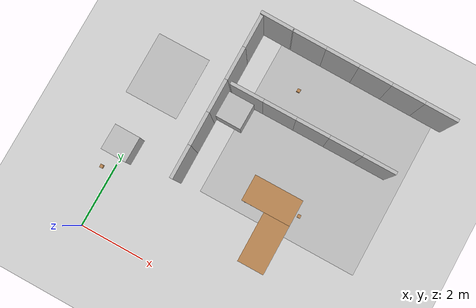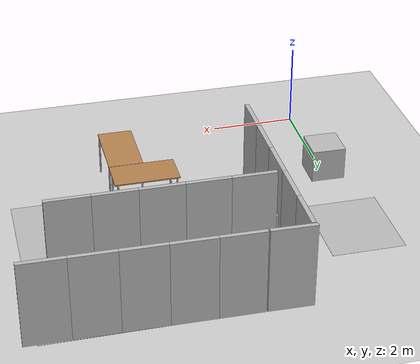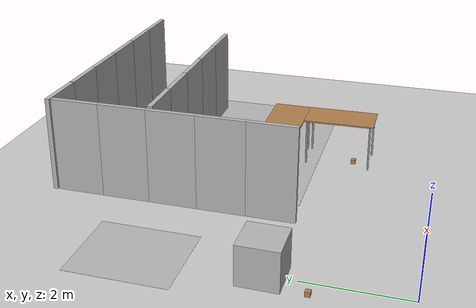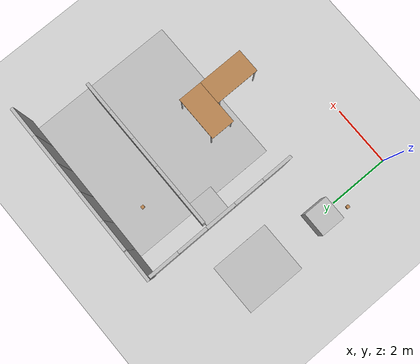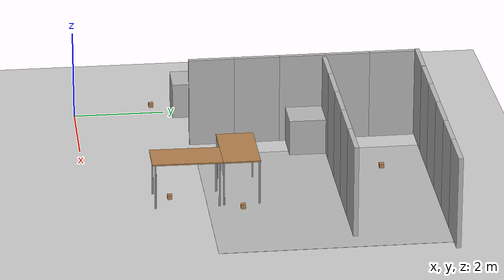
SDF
<sdf version="1.7">
 <world name="default">
  <model name="ground_plane">
   <static>1</static>
   <link name="link">
    <collision name="collision">
     <geometry><plane><normal>0 0 1</normal><size>100 100</size></plane></geometry>
     <surface><friction><ode><mu>100</mu><mu2>50</mu2></ode></friction></surface>
    </collision>
    <visual name="visual">
     <cast_shadows>0</cast_shadows>
     <geometry><plane><normal>0 0 1</normal><size>100 100</size></plane></geometry>
     <material>
      <script><uri>file://media/materials/scripts/gazebo.material</uri><name>Gazebo/Grey</name></script>
     </material>
    </visual>
   </link>
  </model>
  <model name="line_flooring3">
   <link name="link">
    <collision name="collision">
     <geometry><plane><normal>0 0 1</normal><size>5 5</size></plane></geometry>
     <surface><friction><ode><mu>100</mu><mu2>50</mu2></ode></friction></surface>
    </collision>
    <visual name="visual">
     <geometry><plane><normal>0 0 1</normal><size>5 5</size></plane></geometry>
     <material>
      <script>
       <uri>model://env_line_flooring/materials/test_texture.material</uri>
       <name>LineFlooringTexture</name>
      </script>
     </material>
    </visual>
   </link>
   <pose>5 5 0.001 0 -0 3.1415</pose>
   <static>1</static>
  </model>
  <model name="table">
   <static>1</static>
   <link name="link">
    <collision name="surface">
     <pose>0 0 1 0 -0 0</pose>
     <geometry><box><size>1.5 0.8 0.03</size></box></geometry>
     <surface><friction><ode><mu>0.6</mu><mu2>0.6</mu2></ode></friction></surface>
    </collision>
    <visual name="visual1">
     <pose>0 0 1 0 -0 0</pose>
     <geometry><box><size>1.5 0.8 0.03</size></box></geometry>
     <material>
      <script><uri>file://media/materials/scripts/gazebo.material</uri><name>Gazebo/Wood</name></script>
     </material>
    </visual>
    <collision name="front_left_leg">
     <pose>0.68 0.38 0.5 0 -0 0</pose>
     <geometry><cylinder><radius>0.02</radius><length>1</length></cylinder></geometry>
    </collision>
    <visual name="front_left_leg">
     <pose>0.68 0.38 0.5 0 -0 0</pose>
     <geometry><cylinder><radius>0.02</radius><length>1</length></cylinder></geometry>
     <material>
      <script><uri>file://media/materials/scripts/gazebo.material</uri><name>Gazebo/Grey</name></script>
     </material>
    </visual>
    <collision name="front_right_leg">
     <pose>0.68 -0.38 0.5 0 -0 0</pose>
     <geometry><cylinder><radius>0.02</radius><length>1</length></cylinder></geometry>
    </collision>
    <visual name="front_right_leg">
     <pose>0.68 -0.38 0.5 0 -0 0</pose>
     <geometry><cylinder><radius>0.02</radius><length>1</length></cylinder></geometry>
     <material>
      <script><uri>file://media/materials/scripts/gazebo.material</uri><name>Gazebo/Grey</name></script>
     </material>
    </visual>
    <collision name="back_right_leg">
     <pose>-0.68 -0.38 0.5 0 -0 0</pose>
     <geometry><cylinder><radius>0.02</radius><length>1</length></cylinder></geometry>
    </collision>
    <visual name="back_right_leg">
     <pose>-0.68 -0.38 0.5 0 -0 0</pose>
     <geometry><cylinder><radius>0.02</radius><length>1</length></cylinder></geometry>
     <material>
      <script><uri>file://media/materials/scripts/gazebo.material</uri><name>Gazebo/Grey</name></script>
     </material>
    </visual>
    <collision name="back_left_leg">
     <pose>-0.68 0.38 0.5 0 -0 0</pose>
     <geometry><cylinder><radius>0.02</radius><length>1</length></cylinder></geometry>
    </collision>
    <visual name="back_left_leg">
     <pose>-0.68 0.38 0.5 0 -0 0</pose>
     <geometry><cylinder><radius>0.02</radius><length>1</length></cylinder></geometry>
     <material>
      <script><uri>file://media/materials/scripts/gazebo.material</uri><name>Gazebo/Grey</name></script>
     </material>
    </visual>
   </link>
   <pose>4.81799 2.07912 0.010412 -4.7e-05 -0.009088 -1.56892</pose>
  </model>
  <model name="env_large_room">
   <link name="base">
    <inertial>
     <mass>100</mass>
     <inertia><ixx>33.4</ixx><ixy>0</ixy><ixz>0</ixz><iyy>41.7</iyy><iyz>0</iyz><izz>8.42</izz></inertia>
    </inertial>
    <collision name="collision1">
     <pose>-2 0 0 0 -0 0</pose>
     <geometry><box><size>1 0.1 2</size></box></geometry>
    </collision>
    <collision name="collision2">
     <pose>-1 0 0 0 -0 0</pose>
     <geometry><box><size>1 0.1 2</size></box></geometry>
    </collision>
    <collision name="collision3"><geometry><box><size>1 0.1 2</size></box></geometry></collision>
    <collision name="collision4">
     <pose>1 0 0 0 -0 0</pose>
     <geometry><box><size>1 0.1 2</size></box></geometry>
    </collision>
    <collision name="collision5">
     <pose>2 0 0 0 -0 0</pose>
     <geometry><box><size>1 0.1 2</size></box></geometry>
    </collision>
    <visual name="visual1">
     <pose>-2 0 0 0 -0 0</pose>
     <geometry><box><size>1 0.1 2</size></box></geometry>
     <material>
      <script><uri>model://env_wall/materials/test_texture.material</uri><name>WallTexture01</name></script>
     </material>
    </visual>
    <visual name="visual2">
     <pose>-1 0 0 0 -0 0</pose>
     <geometry><box><size>1 0.1 2</size></box></geometry>
     <material>
      <script><uri>model://env_wall/materials/test_texture.material</uri><name>WallTexture01</name></script>
     </material>
    </visual>
    <visual name="visual3">
     <geometry><box><size>1 0.1 2</size></box></geometry>
     <material>
      <script><uri>model://env_wall/materials/test_texture.material</uri><name>WallTexture01</name></script>
     </material>
    </visual>
    <visual name="visual4">
     <pose>1 0 0 0 -0 0</pose>
     <geometry><box><size>1 0.1 2</size></box></geometry>
     <material>
      <script><uri>model://env_wall/materials/test_texture.material</uri><name>WallTexture01</name></script>
     </material>
    </visual>
    <visual name="visual5">
     <pose>2 0 0 0 -0 0</pose>
     <geometry><box><size>1 0.1 2</size></box></geometry>
     <material>
      <script><uri>model://env_wall/materials/test_texture.material</uri><name>WallTexture01</name></script>
     </material>
    </visual>
   </link>
   <pose>4.49859 5.40134 1.0008 -6e-06 -0 -0.002793</pose>
  </model>
  <model name="table_0">
   <static>1</static>
   <link name="link">
    <collision name="surface">
     <pose>0 0 1 0 -0 0</pose>
     <geometry><box><size>1.5 0.8 0.03</size></box></geometry>
     <surface><friction><ode><mu>0.6</mu><mu2>0.6</mu2></ode></friction></surface>
    </collision>
    <visual name="visual1">
     <pose>0 0 1 0 -0 0</pose>
     <geometry><box><size>1.5 0.8 0.03</size></box></geometry>
     <material>
      <script><uri>file://media/materials/scripts/gazebo.material</uri><name>Gazebo/Wood</name></script>
     </material>
    </visual>
    <collision name="front_left_leg">
     <pose>0.68 0.38 0.5 0 -0 0</pose>
     <geometry><cylinder><radius>0.02</radius><length>1</length></cylinder></geometry>
    </collision>
    <visual name="front_left_leg">
     <pose>0.68 0.38 0.5 0 -0 0</pose>
     <geometry><cylinder><radius>0.02</radius><length>1</length></cylinder></geometry>
     <material>
      <script><uri>file://media/materials/scripts/gazebo.material</uri><name>Gazebo/Grey</name></script>
     </material>
    </visual>
    <collision name="front_right_leg">
     <pose>0.68 -0.38 0.5 0 -0 0</pose>
     <geometry><cylinder><radius>0.02</radius><length>1</length></cylinder></geometry>
    </collision>
    <visual name="front_right_leg">
     <pose>0.68 -0.38 0.5 0 -0 0</pose>
     <geometry><cylinder><radius>0.02</radius><length>1</length></cylinder></geometry>
     <material>
      <script><uri>file://media/materials/scripts/gazebo.material</uri><name>Gazebo/Grey</name></script>
     </material>
    </visual>
    <collision name="back_right_leg">
     <pose>-0.68 -0.38 0.5 0 -0 0</pose>
     <geometry><cylinder><radius>0.02</radius><length>1</length></cylinder></geometry>
    </collision>
    <visual name="back_right_leg">
     <pose>-0.68 -0.38 0.5 0 -0 0</pose>
     <geometry><cylinder><radius>0.02</radius><length>1</length></cylinder></geometry>
     <material>
      <script><uri>file://media/materials/scripts/gazebo.material</uri><name>Gazebo/Grey</name></script>
     </material>
    </visual>
    <collision name="back_left_leg">
     <pose>-0.68 0.38 0.5 0 -0 0</pose>
     <geometry><cylinder><radius>0.02</radius><length>1</length></cylinder></geometry>
    </collision>
    <visual name="back_left_leg">
     <pose>-0.68 0.38 0.5 0 -0 0</pose>
     <geometry><cylinder><radius>0.02</radius><length>1</length></cylinder></geometry>
     <material>
      <script><uri>file://media/materials/scripts/gazebo.material</uri><name>Gazebo/Grey</name></script>
     </material>
    </visual>
   </link>
   <pose>4.46738 3.23399 0 0 -0 0</pose>
  </model>
  <model name="wood_cube_10cm_0">
   <link name="link">
    <pose>0 0 0.05 0 -0 0</pose>
    <inertial>
     <mass>0.5167</mass>
     <inertia>
      <ixx>0.000861167</ixx>
      <ixy>0</ixy>
      <ixz>0</ixz>
      <iyy>0.000861167</iyy>
      <iyz>0</iyz>
      <izz>0.000861167</izz>
     </inertia>
    </inertial>
    <collision name="collision">
     <geometry><box><size>0.1 0.1 0.1</size></box></geometry>
     <surface>
      <contact>
       <poissons_ratio>0.347</poissons_ratio>
       <elastic_modulus>8.8e+09</elastic_modulus>
       <ode><kp>100000</kp><kd>100</kd><max_vel>100</max_vel><min_depth>0.001</min_depth></ode>
      </contact>
      <friction>
       <torsional>
        <coefficient>1</coefficient>
        <use_patch_radius>0</use_patch_radius>
        <surface_radius>0.01</surface_radius>
       </torsional>
      </friction>
     </surface>
    </collision>
    <visual name="visual">
     <geometry><box><size>0.1 0.1 0.1</size></box></geometry>
     <material>
      <script><uri>file://media/materials/scripts/gazebo.material</uri><name>Gazebo/Wood</name></script>
     </material>
    </visual>
   </link>
   <pose>3.59739 6.45566 -3e-06 -1e-06 3e-06 0</pose>
  </model>
  <model name="wood_cube_10cm_1">
   <link name="link">
    <pose>0 0 0.05 0 -0 0</pose>
    <inertial>
     <mass>0.5167</mass>
     <inertia>
      <ixx>0.000861167</ixx>
      <ixy>0</ixy>
      <ixz>0</ixz>
      <iyy>0.000861167</iyy>
      <iyz>0</iyz>
      <izz>0.000861167</izz>
     </inertia>
    </inertial>
    <collision name="collision">
     <geometry><box><size>0.1 0.1 0.1</size></box></geometry>
     <surface>
      <contact>
       <poissons_ratio>0.347</poissons_ratio>
       <elastic_modulus>8.8e+09</elastic_modulus>
       <ode><kp>100000</kp><kd>100</kd><max_vel>100</max_vel><min_depth>0.001</min_depth></ode>
      </contact>
      <friction>
       <torsional>
        <coefficient>1</coefficient>
        <use_patch_radius>0</use_patch_radius>
        <surface_radius>0.01</surface_radius>
       </torsional>
      </friction>
     </surface>
    </collision>
    <visual name="visual">
     <geometry><box><size>0.1 0.1 0.1</size></box></geometry>
     <material>
      <script><uri>file://media/materials/scripts/gazebo.material</uri><name>Gazebo/Wood</name></script>
     </material>
    </visual>
   </link>
   <pose>5.35255 3.24149 -3e-06 -3e-06 1e-06 -1.1e-05</pose>
  </model>
  <model name="wood_cube_10cm_3">
   <link name="link">
    <pose>0 0 0.05 0 -0 0</pose>
    <inertial>
     <mass>0.5167</mass>
     <inertia>
      <ixx>0.000861167</ixx>
      <ixy>0</ixy>
      <ixz>0</ixz>
      <iyy>0.000861167</iyy>
      <iyz>0</iyz>
      <izz>0.000861167</izz>
     </inertia>
    </inertial>
    <collision name="collision">
     <geometry><box><size>0.1 0.1 0.1</size></box></geometry>
     <surface>
      <contact>
       <poissons_ratio>0.347</poissons_ratio>
       <elastic_modulus>8.8e+09</elastic_modulus>
       <ode><kp>100000</kp><kd>100</kd><max_vel>100</max_vel><min_depth>0.001</min_depth></ode>
      </contact>
      <friction>
       <torsional>
        <coefficient>1</coefficient>
        <use_patch_radius>0</use_patch_radius>
        <surface_radius>0.01</surface_radius>
       </torsional>
      </friction>
     </surface>
    </collision>
    <visual name="visual">
     <geometry><box><size>0.1 0.1 0.1</size></box></geometry>
     <material>
      <script><uri>file://media/materials/scripts/gazebo.material</uri><name>Gazebo/Wood</name></script>
     </material>
    </visual>
   </link>
   <pose>4.70642 1.74347 -3e-06 1e-06 -3e-06 0</pose>
  </model>
  <model name="env_large_room_7">
   <link name="base">
    <inertial>
     <mass>100</mass>
     <inertia><ixx>33.4</ixx><ixy>0</ixy><ixz>0</ixz><iyy>41.7</iyy><iyz>0</iyz><izz>8.42</izz></inertia>
    </inertial>
    <collision name="collision"><geometry><box><size>1 0.1 2</size></box></geometry></collision>
    <visual name="visual">
     <geometry><box><size>1 0.1 2</size></box></geometry>
     <material>
      <script><uri>model://env_wall/materials/test_texture.material</uri><name>WallTexture01</name></script>
     </material>
    </visual>
   </link>
   <pose>2.26778 7.48741 1.00081 7e-06 -0 -0.019106</pose>
  </model>
  <model name="env_harvestx">
   <static>1</static>
   <link name="link">
    <visual name="visual">
     <geometry><plane><normal>0 0 1</normal><size>2 1.7</size></plane></geometry>
     <material>
      <script><uri>model://env_harvestx/materials/test_texture.material</uri><name>HarvestXTexture</name></script>
     </material>
    </visual>
   </link>
   <pose>0 5 0.001 0 0 -1.57</pose>
  </model>
  <model name="env_large_room_6_clone_0">
   <link name="base">
    <inertial>
     <mass>100</mass>
     <inertia><ixx>33.4</ixx><ixy>0</ixy><ixz>0</ixz><iyy>41.7</iyy><iyz>0</iyz><izz>8.42</izz></inertia>
    </inertial>
    <collision name="collision1">
     <pose>-2 0 0 0 -0 0</pose>
     <geometry><box><size>1 0.1 2</size></box></geometry>
    </collision>
    <collision name="collision2">
     <pose>-1 0 0 0 -0 0</pose>
     <geometry><box><size>1 0.1 2</size></box></geometry>
    </collision>
    <collision name="collision3"><geometry><box><size>1 0.1 2</size></box></geometry></collision>
    <collision name="collision4">
     <pose>1 0 0 0 -0 0</pose>
     <geometry><box><size>1 0.1 2</size></box></geometry>
    </collision>
    <collision name="collision5">
     <pose>2 0 0 0 -0 0</pose>
     <geometry><box><size>1 0.1 2</size></box></geometry>
    </collision>
    <visual name="visual1">
     <pose>-2 0 0 0 -0 0</pose>
     <geometry><box><size>1 0.1 2</size></box></geometry>
     <material>
      <script><uri>model://env_wall/materials/test_texture.material</uri><name>WallTexture01</name></script>
     </material>
    </visual>
    <visual name="visual2">
     <pose>-1 0 0 0 -0 0</pose>
     <geometry><box><size>1 0.1 2</size></box></geometry>
     <material>
      <script><uri>model://env_wall/materials/test_texture.material</uri><name>WallTexture01</name></script>
     </material>
    </visual>
    <visual name="visual3">
     <geometry><box><size>1 0.1 2</size></box></geometry>
     <material>
      <script><uri>model://env_wall/materials/test_texture.material</uri><name>WallTexture01</name></script>
     </material>
    </visual>
    <visual name="visual4">
     <pose>1 0 0 0 -0 0</pose>
     <geometry><box><size>1 0.1 2</size></box></geometry>
     <material>
      <script><uri>model://env_wall/materials/test_texture.material</uri><name>WallTexture01</name></script>
     </material>
    </visual>
    <visual name="visual5">
     <pose>2 0 0 0 -0 0</pose>
     <geometry><box><size>1 0.1 2</size></box></geometry>
     <material>
      <script><uri>model://env_wall/materials/test_texture.material</uri><name>WallTexture01</name></script>
     </material>
    </visual>
   </link>
   <pose>5.29254 7.44592 1.00081 -1.3e-05 -0 -0.012421</pose>
  </model>
  <model name="number3">
   <pose>-0.041012 2.59992 0.400805 0 -0 3.13207</pose>
   <static>0</static>
   <link name="link">
    <visual name="visual">
     <geometry><mesh><uri>model://number1/meshes/number.dae</uri></mesh></geometry>
     <material>
      <script>
       <uri>model://number3/materials/scripts</uri>
       <uri>model://number3/materials/textures</uri>
       <name>Number/Three</name>
      </script>
     </material>
    </visual>
    <collision name="collision">
     <geometry><mesh><uri>model://harvestx_cube/meshes/number.dae</uri></mesh></geometry>
    </collision>
    <inertial>
     <inertia><ixx>1</ixx><ixy>0</ixy><ixz>0</ixz><iyy>1</iyy><iyz>0</iyz><izz>1</izz></inertia>
     <mass>1</mass>
    </inertial>
   </link>
  </model>
  <model name="number6">
   <pose>2.3197 4.95576 0.400805 0 -0 3.13426</pose>
   <static>0</static>
   <link name="link">
    <visual name="visual">
     <geometry><mesh><uri>model://number1/meshes/number.dae</uri></mesh></geometry>
     <material>
      <script>
       <uri>model://number6/materials/scripts</uri>
       <uri>model://number6/materials/textures</uri>
       <name>Number/Six</name>
      </script>
     </material>
    </visual>
    <collision name="collision">
     <geometry><mesh><uri>model://harvestx_cube/meshes/number.dae</uri></mesh></geometry>
    </collision>
    <inertial>
     <inertia><ixx>1</ixx><ixy>0</ixy><ixz>0</ixz><iyy>1</iyy><iyz>0</iyz><izz>1</izz></inertia>
     <mass>1</mass>
    </inertial>
   </link>
  </model>
  <model name="wood_cube_10cm_clone_0_clone">
   <link name="link">
    <pose>0 0 0.05 0 -0 0</pose>
    <inertial>
     <mass>0.5167</mass>
     <inertia>
      <ixx>0.000861167</ixx>
      <ixy>0</ixy>
      <ixz>0</ixz>
      <iyy>0.000861167</iyy>
      <iyz>0</iyz>
      <izz>0.000861167</izz>
     </inertia>
    </inertial>
    <collision name="collision">
     <geometry><box><size>0.1 0.1 0.1</size></box></geometry>
     <surface>
      <contact>
       <poissons_ratio>0.347</poissons_ratio>
       <elastic_modulus>8.8e+09</elastic_modulus>
       <ode><kp>100000</kp><kd>100</kd><max_vel>100</max_vel><min_depth>0.001</min_depth></ode>
      </contact>
      <friction>
       <torsional>
        <coefficient>1</coefficient>
        <use_patch_radius>0</use_patch_radius>
        <surface_radius>0.01</surface_radius>
       </torsional>
      </friction>
     </surface>
    </collision>
    <visual name="visual">
     <geometry><box><size>0.1 0.1 0.1</size></box></geometry>
     <material>
      <script><uri>file://media/materials/scripts/gazebo.material</uri><name>Gazebo/Wood</name></script>
     </material>
    </visual>
   </link>
   <pose>-0.346309 1.75709 -3e-06 1e-06 -3e-06 0</pose>
  </model>
  <model name="env_large_room_clone">
   <link name="base">
    <inertial>
     <mass>100</mass>
     <inertia><ixx>33.4</ixx><ixy>0</ixy><ixz>0</ixz><iyy>41.7</iyy><iyz>0</iyz><izz>8.42</izz></inertia>
    </inertial>
    <collision name="collision1">
     <pose>-2 0 0 0 -0 0</pose>
     <geometry><box><size>1 0.1 2</size></box></geometry>
    </collision>
    <collision name="collision2">
     <pose>-1 0 0 0 -0 0</pose>
     <geometry><box><size>1 0.1 2</size></box></geometry>
    </collision>
    <collision name="collision3"><geometry><box><size>1 0.1 2</size></box></geometry></collision>
    <collision name="collision4">
     <pose>1 0 0 0 -0 0</pose>
     <geometry><box><size>1 0.1 2</size></box></geometry>
    </collision>
    <collision name="collision5">
     <pose>2 0 0 0 -0 0</pose>
     <geometry><box><size>1 0.1 2</size></box></geometry>
    </collision>
    <visual name="visual1">
     <pose>-2 0 0 0 -0 0</pose>
     <geometry><box><size>1 0.1 2</size></box></geometry>
     <material>
      <script><uri>model://env_wall/materials/test_texture.material</uri><name>WallTexture01</name></script>
     </material>
    </visual>
    <visual name="visual2">
     <pose>-1 0 0 0 -0 0</pose>
     <geometry><box><size>1 0.1 2</size></box></geometry>
     <material>
      <script><uri>model://env_wall/materials/test_texture.material</uri><name>WallTexture01</name></script>
     </material>
    </visual>
    <visual name="visual3">
     <geometry><box><size>1 0.1 2</size></box></geometry>
     <material>
      <script><uri>model://env_wall/materials/test_texture.material</uri><name>WallTexture01</name></script>
     </material>
    </visual>
    <visual name="visual4">
     <pose>1 0 0 0 -0 0</pose>
     <geometry><box><size>1 0.1 2</size></box></geometry>
     <material>
      <script><uri>model://env_wall/materials/test_texture.material</uri><name>WallTexture01</name></script>
     </material>
    </visual>
    <visual name="visual5">
     <pose>2 0 0 0 -0 0</pose>
     <geometry><box><size>1 0.1 2</size></box></geometry>
     <material>
      <script><uri>model://env_wall/materials/test_texture.material</uri><name>WallTexture01</name></script>
     </material>
    </visual>
   </link>
   <pose>1.84985 4.92711 1.00083 -1.1e-05 -7e-05 -1.56607</pose>
  </model>
 </world>
</sdf>
